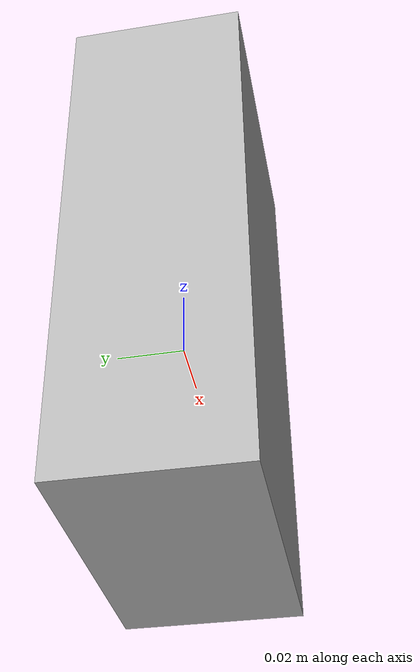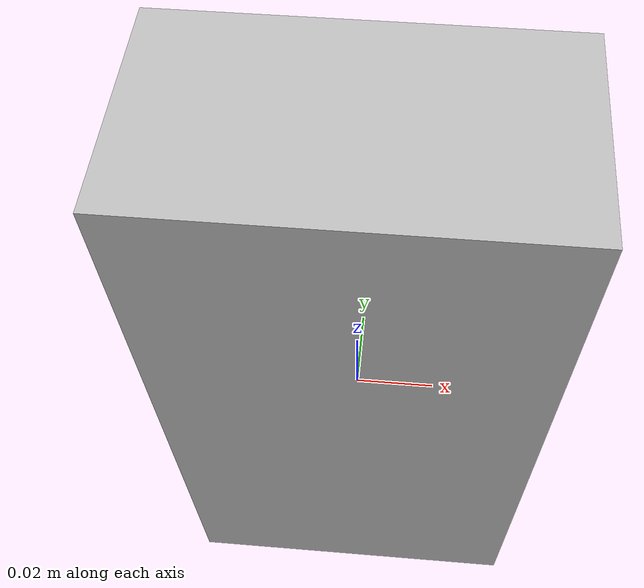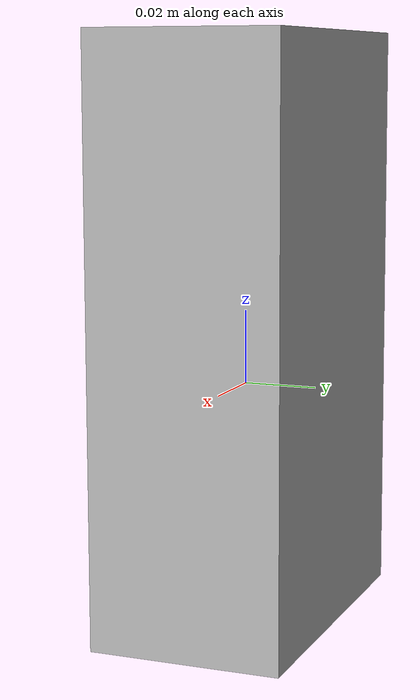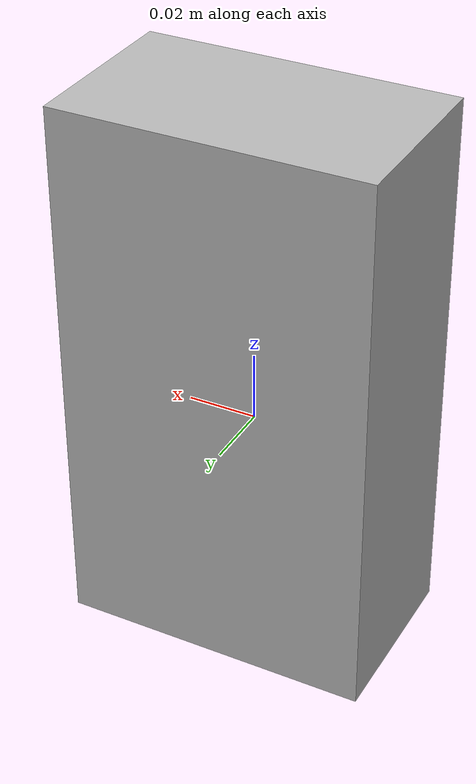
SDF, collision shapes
<?xml version="1.0"?>
<sdf version="1.7">
  <model name="ycb_mustard_bottle">
    <link name="ycb_mustard_bottle_base_link">
      <inertial>
        <mass>0.603000</mass>
        <inertia>
          <ixx>0.002009</ixx>
          <ixy>0</ixy>
          <ixz>0</ixz>
          <iyy>0.000633</iyy>
          <iyz>0</iyz>
          <izz>0.002302</izz>
        </inertia>
      </inertial>
      <visual name="ycb_mustard_bottle_base_link">
        <pose>0.0049 0.027 -0.062 0.0 0.0 0.4</pose>
        <geometry>
          <mesh>
            <uri>package://drake_models/ycb/meshes/006_mustard_bottle_textured.obj</uri>
          </mesh>
        </geometry>
      </visual>
      <collision name="box_collision">
        <pose>0 0 0.015 0.0 0 0</pose>
        <geometry>
          <box>
            <size>0.090000 0.052200 0.160300</size>
          </box>
        </geometry>
      </collision>
      <collision name="point_collision1">
        <pose>0.045 0.0261 0.09515 0 0 0 </pose>
        <geometry>
          <sphere>
            <radius>1e-7</radius>
          </sphere>
        </geometry>
      </collision>
      <collision name="point_collision2">
        <pose>0.04500 0.02610 -0.06515 0 0 0 </pose>
        <geometry>
          <sphere>
            <radius>1e-7</radius>
          </sphere>
        </geometry>
      </collision>
      <collision name="point_collision3">
        <pose>-0.04500 0.02610 0.09515 0 0 0 </pose>
        <geometry>
          <sphere>
            <radius>1e-7</radius>
          </sphere>
        </geometry>
      </collision>
      <collision name="point_collision4">
        <pose>-0.04500 0.02610 -0.06515 0 0 0 </pose>
        <geometry>
          <sphere>
            <radius>1e-7</radius>
          </sphere>
        </geometry>
      </collision>
      <collision name="point_collision5">
        <pose>0.04500 -0.02610 0.09515 0 0 0 </pose>
        <geometry>
          <sphere>
            <radius>1e-7</radius>
          </sphere>
        </geometry>
      </collision>
      <collision name="point_collision6">
        <pose>0.04500 -0.02610 -0.06515 0 0 0 </pose>
        <geometry>
          <sphere>
            <radius>1e-7</radius>
          </sphere>
        </geometry>
      </collision>
      <collision name="point_collision7">
        <pose>-0.04500 -0.02610 0.09515 0 0 0 </pose>
        <geometry>
          <sphere>
            <radius>1e-7</radius>
          </sphere>
        </geometry>
      </collision>
      <collision name="point_collision8">
        <pose>-0.04500 -0.02610 -0.06515 0 0 0 </pose>
        <geometry>
          <sphere>
            <radius>1e-7</radius>
          </sphere>
        </geometry>
      </collision>
    </link>
  </model>
</sdf>
